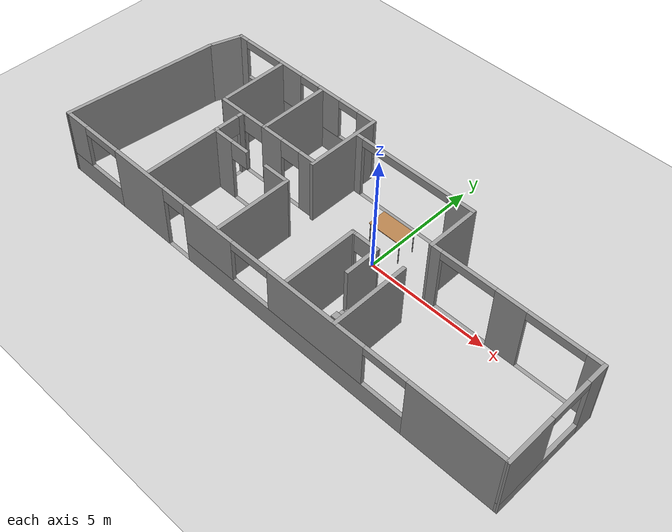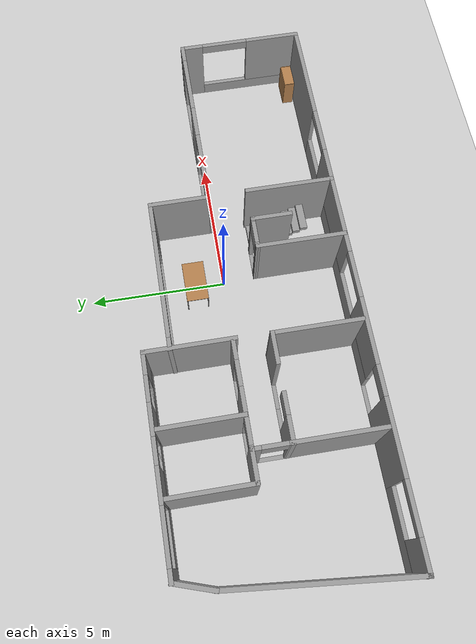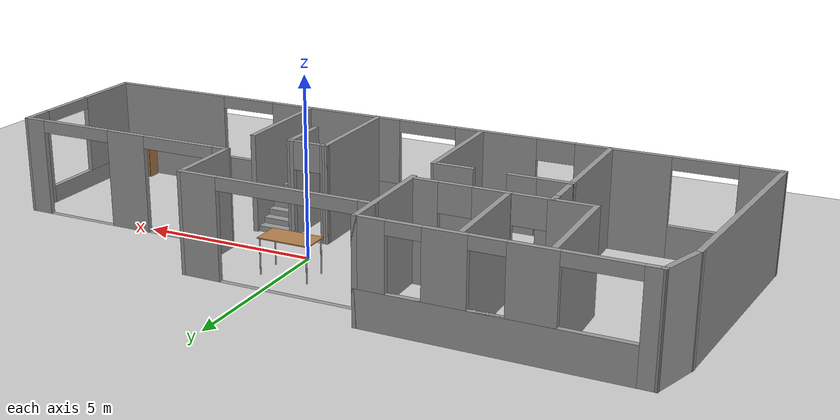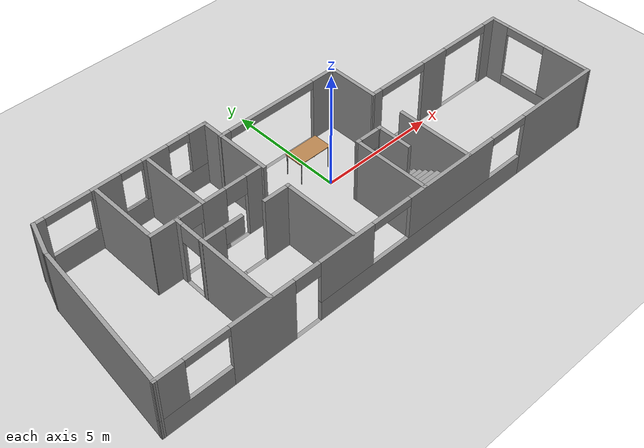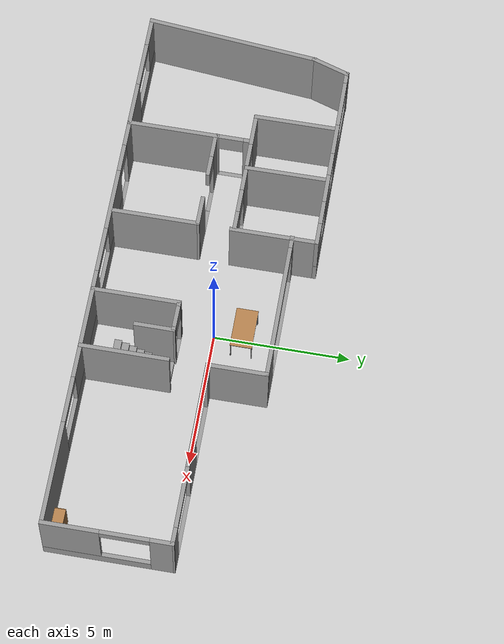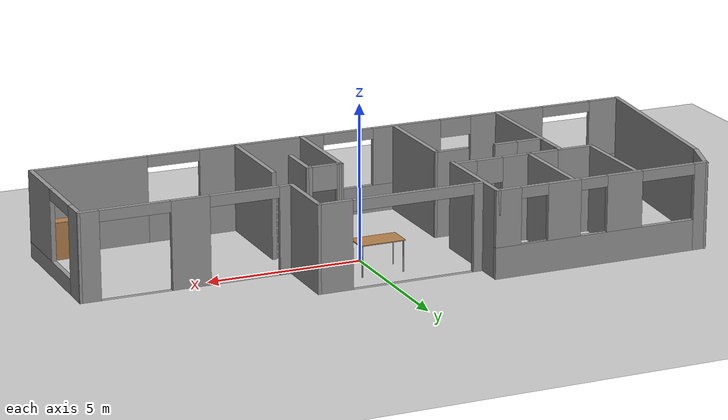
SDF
<sdf version="1.6">
 <world name="default">
  <model name="ground_plane">
   <static>1</static>
   <link name="link">
    <collision name="collision">
     <geometry><plane><normal>0 0 1</normal><size>100 100</size></plane></geometry>
     <surface>
      <contact><collide_bitmask>65535</collide_bitmask></contact>
      <friction><ode><mu>100</mu><mu2>50</mu2></ode></friction>
     </surface>
    </collision>
    <visual name="visual">
     <cast_shadows>0</cast_shadows>
     <geometry><plane><normal>0 0 1</normal><size>100 100</size></plane></geometry>
     <material>
      <script><uri>file://media/materials/scripts/gazebo.material</uri><name>Gazebo/Grey</name></script>
     </material>
    </visual>
   </link>
  </model>
  <model name="floor1">
   <pose>-1.11134 -0.568788 0 0 -0 0</pose>
   <link name="Stairs_1">
    <visual name="Stairs_1_Visual_0">
     <pose>2.86032 -0.790827 0.08125 0 -0 0</pose>
     <geometry><box><size>1 0.26925 0.1625</size></box></geometry>
     <material>
      <script><uri>file://media/materials/scripts/gazebo.material</uri><name>Gazebo/Grey</name></script>
      <ambient>1 1 1 1</ambient>
     </material>
     <meta><layer>0</layer></meta>
    </visual>
    <collision name="Stairs_1_Collision_0">
     <geometry><box><size>1 0.26925 0.1625</size></box></geometry>
     <pose>2.86032 -0.790827 0.08125 0 -0 0</pose>
    </collision>
    <visual name="Stairs_1_Visual_1">
     <pose>2.86032 -1.06008 0.24375 0 -0 0</pose>
     <geometry><box><size>1 0.26925 0.1625</size></box></geometry>
     <material>
      <script><uri>file://media/materials/scripts/gazebo.material</uri><name>Gazebo/Grey</name></script>
      <ambient>1 1 1 1</ambient>
     </material>
     <meta><layer>0</layer></meta>
    </visual>
    <collision name="Stairs_1_Collision_1">
     <geometry><box><size>1 0.26925 0.1625</size></box></geometry>
     <pose>2.86032 -1.06008 0.24375 0 -0 0</pose>
    </collision>
    <visual name="Stairs_1_Visual_2">
     <pose>2.86032 -1.32933 0.40625 0 -0 0</pose>
     <geometry><box><size>1 0.26925 0.1625</size></box></geometry>
     <material>
      <script><uri>file://media/materials/scripts/gazebo.material</uri><name>Gazebo/Grey</name></script>
      <ambient>1 1 1 1</ambient>
     </material>
     <meta><layer>0</layer></meta>
    </visual>
    <collision name="Stairs_1_Collision_2">
     <geometry><box><size>1 0.26925 0.1625</size></box></geometry>
     <pose>2.86032 -1.32933 0.40625 0 -0 0</pose>
    </collision>
    <visual name="Stairs_1_Visual_3">
     <pose>2.86032 -1.59858 0.56875 0 -0 0</pose>
     <geometry><box><size>1 0.26925 0.1625</size></box></geometry>
     <material>
      <script><uri>file://media/materials/scripts/gazebo.material</uri><name>Gazebo/Grey</name></script>
      <ambient>1 1 1 1</ambient>
     </material>
     <meta><layer>0</layer></meta>
    </visual>
    <collision name="Stairs_1_Collision_3">
     <geometry><box><size>1 0.26925 0.1625</size></box></geometry>
     <pose>2.86032 -1.59858 0.56875 0 -0 0</pose>
    </collision>
    <visual name="Stairs_1_Visual_4">
     <pose>2.86032 -1.86783 0.73125 0 -0 0</pose>
     <geometry><box><size>1 0.26925 0.1625</size></box></geometry>
     <material>
      <script><uri>file://media/materials/scripts/gazebo.material</uri><name>Gazebo/Grey</name></script>
      <ambient>1 1 1 1</ambient>
     </material>
     <meta><layer>0</layer></meta>
    </visual>
    <collision name="Stairs_1_Collision_4">
     <geometry><box><size>1 0.26925 0.1625</size></box></geometry>
     <pose>2.86032 -1.86783 0.73125 0 -0 0</pose>
    </collision>
    <visual name="Stairs_1_Visual_5">
     <pose>2.86032 -2.13708 0.89375 0 -0 0</pose>
     <geometry><box><size>1 0.26925 0.1625</size></box></geometry>
     <material>
      <script><uri>file://media/materials/scripts/gazebo.material</uri><name>Gazebo/Grey</name></script>
      <ambient>1 1 1 1</ambient>
     </material>
     <meta><layer>0</layer></meta>
    </visual>
    <collision name="Stairs_1_Collision_5">
     <geometry><box><size>1 0.26925 0.1625</size></box></geometry>
     <pose>2.86032 -2.13708 0.89375 0 -0 0</pose>
    </collision>
    <visual name="Stairs_1_Visual_6">
     <pose>2.86032 -2.40633 1.05625 0 -0 0</pose>
     <geometry><box><size>1 0.26925 0.1625</size></box></geometry>
     <material>
      <script><uri>file://media/materials/scripts/gazebo.material</uri><name>Gazebo/Grey</name></script>
      <ambient>1 1 1 1</ambient>
     </material>
     <meta><layer>0</layer></meta>
    </visual>
    <collision name="Stairs_1_Collision_6">
     <geometry><box><size>1 0.26925 0.1625</size></box></geometry>
     <pose>2.86032 -2.40633 1.05625 0 -0 0</pose>
    </collision>
    <visual name="Stairs_1_Visual_7">
     <pose>2.86032 -2.67558 1.21875 0 -0 0</pose>
     <geometry><box><size>1 0.26925 0.1625</size></box></geometry>
     <material>
      <script><uri>file://media/materials/scripts/gazebo.material</uri><name>Gazebo/Grey</name></script>
      <ambient>1 1 1 1</ambient>
     </material>
     <meta><layer>0</layer></meta>
    </visual>
    <collision name="Stairs_1_Collision_7">
     <geometry><box><size>1 0.26925 0.1625</size></box></geometry>
     <pose>2.86032 -2.67558 1.21875 0 -0 0</pose>
    </collision>
   </link>
   <link name="Wall_0">
    <pose>-5.54111 3.7677 0 0 -0 0</pose>
    <visual name="Wall_0_Visual_0">
     <pose>-3.39577 0 1.4 0 -0 0</pose>
     <geometry><box><size>0.476592 0.15 2.8</size></box></geometry>
     <material>
      <script><uri>file://media/materials/scripts/gazebo.material</uri><name>Gazebo/Grey</name></script>
      <ambient>1 1 1 1</ambient>
     </material>
     <meta><layer>0</layer></meta>
    </visual>
    <collision name="Wall_0_Collision_0">
     <geometry><box><size>0.476592 0.15 2.8</size></box></geometry>
     <pose>-3.39577 0 1.4 0 -0 0</pose>
    </collision>
    <visual name="Wall_0_Visual_1">
     <pose>0.238296 0 0.5 0 -0 0</pose>
     <geometry><box><size>6.79154 0.15 1</size></box></geometry>
     <material>
      <script><uri>file://media/materials/scripts/gazebo.material</uri><name>Gazebo/Grey</name></script>
      <ambient>1 1 1 1</ambient>
     </material>
     <meta><layer>0</layer></meta>
    </visual>
    <collision name="Wall_0_Collision_1">
     <geometry><box><size>6.79154 0.15 1</size></box></geometry>
     <pose>0.238296 0 0.5 0 -0 0</pose>
    </collision>
    <visual name="Wall_0_Visual_2">
     <pose>-0.740274 0 1.9 0 -0 0</pose>
     <geometry><box><size>1.2084 0.15 1.8</size></box></geometry>
     <material>
      <script><uri>file://media/materials/scripts/gazebo.material</uri><name>Gazebo/Grey</name></script>
      <ambient>1 1 1 1</ambient>
     </material>
     <meta><layer>0</layer></meta>
    </visual>
    <collision name="Wall_0_Collision_2">
     <geometry><box><size>1.2084 0.15 1.8</size></box></geometry>
     <pose>-0.740274 0 1.9 0 -0 0</pose>
    </collision>
    <visual name="Wall_0_Visual_3">
     <pose>1.32363 0 1.9 0 -0 0</pose>
     <geometry><box><size>1.10942 0.15 1.8</size></box></geometry>
     <material>
      <script><uri>file://media/materials/scripts/gazebo.material</uri><name>Gazebo/Grey</name></script>
      <ambient>1 1 1 1</ambient>
     </material>
     <meta><layer>0</layer></meta>
    </visual>
    <collision name="Wall_0_Collision_3">
     <geometry><box><size>1.10942 0.15 1.8</size></box></geometry>
     <pose>1.32363 0 1.9 0 -0 0</pose>
    </collision>
    <visual name="Wall_0_Visual_4">
     <pose>3.2087 0 1.9 0 -0 0</pose>
     <geometry><box><size>0.850721 0.15 1.8</size></box></geometry>
     <material>
      <script><uri>file://media/materials/scripts/gazebo.material</uri><name>Gazebo/Grey</name></script>
      <ambient>1 1 1 1</ambient>
     </material>
     <meta><layer>0</layer></meta>
    </visual>
    <collision name="Wall_0_Collision_4">
     <geometry><box><size>0.850721 0.15 1.8</size></box></geometry>
     <pose>3.2087 0 1.9 0 -0 0</pose>
    </collision>
    <visual name="Wall_0_Visual_5">
     <pose>0.316424 0 1 0 -0 0</pose>
     <geometry><box><size>0.905 0.15 0</size></box></geometry>
     <material>
      <script><uri>file://media/materials/scripts/gazebo.material</uri><name>Gazebo/Grey</name></script>
      <ambient>1 1 1 1</ambient>
     </material>
     <meta><layer>0</layer></meta>
    </visual>
    <collision name="Wall_0_Collision_5">
     <geometry><box><size>0.905 0.15 0</size></box></geometry>
     <pose>0.316424 0 1 0 -0 0</pose>
    </collision>
    <visual name="Wall_0_Visual_6">
     <pose>2.33084 0 1 0 -0 0</pose>
     <geometry><box><size>0.905 0.15 0</size></box></geometry>
     <material>
      <script><uri>file://media/materials/scripts/gazebo.material</uri><name>Gazebo/Grey</name></script>
      <ambient>1 1 1 1</ambient>
     </material>
     <meta><layer>0</layer></meta>
    </visual>
    <collision name="Wall_0_Collision_6">
     <geometry><box><size>0.905 0.15 0</size></box></geometry>
     <pose>2.33084 0 1 0 -0 0</pose>
    </collision>
    <visual name="Wall_0_Visual_7">
     <pose>0.316424 0 2.625 0 -0 0</pose>
     <geometry><box><size>0.905 0.15 0.35</size></box></geometry>
     <material>
      <script><uri>file://media/materials/scripts/gazebo.material</uri><name>Gazebo/Grey</name></script>
      <ambient>1 1 1 1</ambient>
     </material>
     <meta><layer>0</layer></meta>
    </visual>
    <collision name="Wall_0_Collision_7">
     <geometry><box><size>0.905 0.15 0.35</size></box></geometry>
     <pose>0.316424 0 2.625 0 -0 0</pose>
    </collision>
    <visual name="Wall_0_Visual_8">
     <pose>2.33084 0 2.625 0 -0 0</pose>
     <geometry><box><size>0.905 0.15 0.35</size></box></geometry>
     <material>
      <script><uri>file://media/materials/scripts/gazebo.material</uri><name>Gazebo/Grey</name></script>
      <ambient>1 1 1 1</ambient>
     </material>
     <meta><layer>0</layer></meta>
    </visual>
    <collision name="Wall_0_Collision_8">
     <geometry><box><size>0.905 0.15 0.35</size></box></geometry>
     <pose>2.33084 0 2.625 0 -0 0</pose>
    </collision>
    <visual name="Wall_0_Visual_9">
     <pose>-2.25097 0 2.6255 0 -0 0</pose>
     <geometry><box><size>1.813 0.15 0.349</size></box></geometry>
     <material>
      <script><uri>file://media/materials/scripts/gazebo.material</uri><name>Gazebo/Grey</name></script>
      <ambient>1 1 1 1</ambient>
     </material>
     <meta><layer>0</layer></meta>
    </visual>
    <collision name="Wall_0_Collision_9">
     <geometry><box><size>1.813 0.15 0.349</size></box></geometry>
     <pose>-2.25097 0 2.6255 0 -0 0</pose>
    </collision>
   </link>
   <link name="Wall_12">
    <pose>-4.39611 0.762698 0 0 -0 0</pose>
    <visual name="Wall_12_Visual_0">
     <pose>-1.75748 0 1.4 0 -0 0</pose>
     <geometry><box><size>1.23504 0.15 2.8</size></box></geometry>
     <material>
      <script><uri>file://media/materials/scripts/gazebo.material</uri><name>Gazebo/Grey</name></script>
      <ambient>1 1 1 1</ambient>
     </material>
     <meta><layer>0</layer></meta>
    </visual>
    <collision name="Wall_12_Collision_0">
     <geometry><box><size>1.23504 0.15 2.8</size></box></geometry>
     <pose>-1.75748 0 1.4 0 -0 0</pose>
    </collision>
    <visual name="Wall_12_Visual_1">
     <pose>0.267406 0 1.4 0 -0 0</pose>
     <geometry><box><size>1.01474 0.15 2.8</size></box></geometry>
     <material>
      <script><uri>file://media/materials/scripts/gazebo.material</uri><name>Gazebo/Grey</name></script>
      <ambient>1 1 1 1</ambient>
     </material>
     <meta><layer>0</layer></meta>
    </visual>
    <collision name="Wall_12_Collision_1">
     <geometry><box><size>1.01474 0.15 2.8</size></box></geometry>
     <pose>0.267406 0 1.4 0 -0 0</pose>
    </collision>
    <visual name="Wall_12_Visual_2">
     <pose>2.02489 0 1.4 0 -0 0</pose>
     <geometry><box><size>0.700223 0.15 2.8</size></box></geometry>
     <material>
      <script><uri>file://media/materials/scripts/gazebo.material</uri><name>Gazebo/Grey</name></script>
      <ambient>1 1 1 1</ambient>
     </material>
     <meta><layer>0</layer></meta>
    </visual>
    <collision name="Wall_12_Collision_2">
     <geometry><box><size>0.700223 0.15 2.8</size></box></geometry>
     <pose>2.02489 0 1.4 0 -0 0</pose>
    </collision>
    <visual name="Wall_12_Visual_3">
     <pose>-0.689965 0 0 0 -0 0</pose>
     <geometry><box><size>0.9 0.15 0</size></box></geometry>
     <material>
      <script><uri>file://media/materials/scripts/gazebo.material</uri><name>Gazebo/Grey</name></script>
      <ambient>1 1 1 1</ambient>
     </material>
     <meta><layer>0</layer></meta>
    </visual>
    <collision name="Wall_12_Collision_3">
     <geometry><box><size>0.9 0.15 0</size></box></geometry>
     <pose>-0.689965 0 0 0 -0 0</pose>
    </collision>
    <visual name="Wall_12_Visual_4">
     <pose>1.22478 0 0 0 -0 0</pose>
     <geometry><box><size>0.9 0.15 0</size></box></geometry>
     <material>
      <script><uri>file://media/materials/scripts/gazebo.material</uri><name>Gazebo/Grey</name></script>
      <ambient>1 1 1 1</ambient>
     </material>
     <meta><layer>0</layer></meta>
    </visual>
    <collision name="Wall_12_Collision_4">
     <geometry><box><size>0.9 0.15 0</size></box></geometry>
     <pose>1.22478 0 0 0 -0 0</pose>
    </collision>
    <visual name="Wall_12_Visual_5">
     <pose>-0.689965 0 2.4 0 -0 0</pose>
     <geometry><box><size>0.9 0.15 0.8</size></box></geometry>
     <material>
      <script><uri>file://media/materials/scripts/gazebo.material</uri><name>Gazebo/Grey</name></script>
      <ambient>1 1 1 1</ambient>
     </material>
     <meta><layer>0</layer></meta>
    </visual>
    <collision name="Wall_12_Collision_5">
     <geometry><box><size>0.9 0.15 0.8</size></box></geometry>
     <pose>-0.689965 0 2.4 0 -0 0</pose>
    </collision>
    <visual name="Wall_12_Visual_6">
     <pose>1.22478 0 2.4 0 -0 0</pose>
     <geometry><box><size>0.9 0.15 0.8</size></box></geometry>
     <material>
      <script><uri>file://media/materials/scripts/gazebo.material</uri><name>Gazebo/Grey</name></script>
      <ambient>1 1 1 1</ambient>
     </material>
     <meta><layer>0</layer></meta>
    </visual>
    <collision name="Wall_12_Collision_6">
     <geometry><box><size>0.9 0.15 0.8</size></box></geometry>
     <pose>1.22478 0 2.4 0 -0 0</pose>
    </collision>
   </link>
   <link name="Wall_16">
    <pose>0.703392 2.8632 0 0 -0 -0.001291</pose>
    <visual name="Wall_16_Visual_0">
     <pose>-2.54964 0 1.4 0 -0 0</pose>
     <geometry><box><size>0.473046 0.15 2.8</size></box></geometry>
     <material>
      <script><uri>file://media/materials/scripts/gazebo.material</uri><name>Gazebo/Grey</name></script>
      <ambient>1 1 1 1</ambient>
     </material>
     <meta><layer>0</layer></meta>
    </visual>
    <collision name="Wall_16_Collision_0">
     <geometry><box><size>0.473046 0.15 2.8</size></box></geometry>
     <pose>-2.54964 0 1.4 0 -0 0</pose>
    </collision>
    <visual name="Wall_16_Visual_1">
     <pose>2.21802 0 1.4 0 -0 0</pose>
     <geometry><box><size>1.13628 0.15 2.8</size></box></geometry>
     <material>
      <script><uri>file://media/materials/scripts/gazebo.material</uri><name>Gazebo/Grey</name></script>
      <ambient>1 1 1 1</ambient>
     </material>
     <meta><layer>0</layer></meta>
    </visual>
    <collision name="Wall_16_Collision_1">
     <geometry><box><size>1.13628 0.15 2.8</size></box></geometry>
     <pose>2.21802 0 1.4 0 -0 0</pose>
    </collision>
    <visual name="Wall_16_Visual_2">
     <pose>-0.331617 0 0 0 -0 0</pose>
     <geometry><box><size>3.963 0.15 0</size></box></geometry>
     <material>
      <script><uri>file://media/materials/scripts/gazebo.material</uri><name>Gazebo/Grey</name></script>
      <ambient>1 1 1 1</ambient>
     </material>
     <meta><layer>0</layer></meta>
    </visual>
    <collision name="Wall_16_Collision_2">
     <geometry><box><size>3.963 0.15 0</size></box></geometry>
     <pose>-0.331617 0 0 0 -0 0</pose>
    </collision>
    <visual name="Wall_16_Visual_3">
     <pose>-0.331617 0 2.625 0 -0 0</pose>
     <geometry><box><size>3.963 0.15 0.35</size></box></geometry>
     <material>
      <script><uri>file://media/materials/scripts/gazebo.material</uri><name>Gazebo/Grey</name></script>
      <ambient>1 1 1 1</ambient>
     </material>
     <meta><layer>0</layer></meta>
    </visual>
    <collision name="Wall_16_Collision_3">
     <geometry><box><size>3.963 0.15 0.35</size></box></geometry>
     <pose>-0.331617 0 2.625 0 -0 0</pose>
    </collision>
   </link>
   <link name="Wall_17">
    <collision name="Wall_17_Collision">
     <geometry><box><size>2.25007 0.15 2.8</size></box></geometry>
     <pose>0 0 1.4 0 -0 0</pose>
    </collision>
    <visual name="Wall_17_Visual">
     <pose>0 0 1.4 0 -0 0</pose>
     <geometry><box><size>2.25007 0.15 2.8</size></box></geometry>
     <material>
      <script><uri>file://media/materials/scripts/gazebo.material</uri><name>Gazebo/Grey</name></script>
      <ambient>1 1 1 1</ambient>
     </material>
     <meta><layer>0</layer></meta>
    </visual>
    <pose>3.41489 1.8097 0 0 -0 -1.5708</pose>
   </link>
   <link name="Wall_18">
    <pose>6.76989 0.754698 0 0 -0 -0.00149</pose>
    <visual name="Wall_18_Visual_0">
     <pose>-3.17918 0 1.4 0 -0 0</pose>
     <geometry><box><size>0.501647 0.15 2.8</size></box></geometry>
     <material>
      <script><uri>file://media/materials/scripts/gazebo.material</uri><name>Gazebo/Grey</name></script>
      <ambient>1 1 1 1</ambient>
     </material>
     <meta><layer>0</layer></meta>
    </visual>
    <collision name="Wall_18_Collision_0">
     <geometry><box><size>0.501647 0.15 2.8</size></box></geometry>
     <pose>-3.17918 0 1.4 0 -0 0</pose>
    </collision>
    <visual name="Wall_18_Visual_1">
     <pose>-0.088728 0 1.4 0 -0 0</pose>
     <geometry><box><size>1.22525 0.15 2.8</size></box></geometry>
     <material>
      <script><uri>file://media/materials/scripts/gazebo.material</uri><name>Gazebo/Grey</name></script>
      <ambient>1 1 1 1</ambient>
     </material>
     <meta><layer>0</layer></meta>
    </visual>
    <collision name="Wall_18_Collision_1">
     <geometry><box><size>1.22525 0.15 2.8</size></box></geometry>
     <pose>-0.088728 0 1.4 0 -0 0</pose>
    </collision>
    <visual name="Wall_18_Visual_2">
     <pose>3.09345 0 1.4 0 -0 0</pose>
     <geometry><box><size>0.673102 0.15 2.8</size></box></geometry>
     <material>
      <script><uri>file://media/materials/scripts/gazebo.material</uri><name>Gazebo/Grey</name></script>
      <ambient>1 1 1 1</ambient>
     </material>
     <meta><layer>0</layer></meta>
    </visual>
    <collision name="Wall_18_Collision_2">
     <geometry><box><size>0.673102 0.15 2.8</size></box></geometry>
     <pose>3.09345 0 1.4 0 -0 0</pose>
    </collision>
    <visual name="Wall_18_Visual_3">
     <pose>-1.81485 0 0 0 -0 0</pose>
     <geometry><box><size>2.227 0.15 0</size></box></geometry>
     <material>
      <script><uri>file://media/materials/scripts/gazebo.material</uri><name>Gazebo/Grey</name></script>
      <ambient>1 1 1 1</ambient>
     </material>
     <meta><layer>0</layer></meta>
    </visual>
    <collision name="Wall_18_Collision_3">
     <geometry><box><size>2.227 0.15 0</size></box></geometry>
     <pose>-1.81485 0 0 0 -0 0</pose>
    </collision>
    <visual name="Wall_18_Visual_4">
     <pose>1.6404 0 0 0 -0 0</pose>
     <geometry><box><size>2.233 0.15 0</size></box></geometry>
     <material>
      <script><uri>file://media/materials/scripts/gazebo.material</uri><name>Gazebo/Grey</name></script>
      <ambient>1 1 1 1</ambient>
     </material>
     <meta><layer>0</layer></meta>
    </visual>
    <collision name="Wall_18_Collision_4">
     <geometry><box><size>2.233 0.15 0</size></box></geometry>
     <pose>1.6404 0 0 0 -0 0</pose>
    </collision>
    <visual name="Wall_18_Visual_5">
     <pose>-1.81485 0 2.625 0 -0 0</pose>
     <geometry><box><size>2.227 0.15 0.35</size></box></geometry>
     <material>
      <script><uri>file://media/materials/scripts/gazebo.material</uri><name>Gazebo/Grey</name></script>
      <ambient>1 1 1 1</ambient>
     </material>
     <meta><layer>0</layer></meta>
    </visual>
    <collision name="Wall_18_Collision_5">
     <geometry><box><size>2.227 0.15 0.35</size></box></geometry>
     <pose>-1.81485 0 2.625 0 -0 0</pose>
    </collision>
    <visual name="Wall_18_Visual_6">
     <pose>1.6404 0 2.625 0 -0 0</pose>
     <geometry><box><size>2.233 0.15 0.35</size></box></geometry>
     <material>
      <script><uri>file://media/materials/scripts/gazebo.material</uri><name>Gazebo/Grey</name></script>
      <ambient>1 1 1 1</ambient>
     </material>
     <meta><layer>0</layer></meta>
    </visual>
    <collision name="Wall_18_Collision_6">
     <geometry><box><size>2.233 0.15 0.35</size></box></geometry>
     <pose>1.6404 0 2.625 0 -0 0</pose>
    </collision>
   </link>
   <link name="Wall_2">
    <collision name="Wall_2_Collision">
     <geometry><box><size>3.25 0.15 2.8</size></box></geometry>
     <pose>0 0 1.4 0 -0 0</pose>
    </collision>
    <visual name="Wall_2_Visual">
     <pose>0 0 1.4 0 -0 0</pose>
     <geometry><box><size>3.25 0.15 2.8</size></box></geometry>
     <material>
      <script><uri>file://media/materials/scripts/gazebo.material</uri><name>Gazebo/Grey</name></script>
      <ambient>1 1 1 1</ambient>
     </material>
     <meta><layer>0</layer></meta>
    </visual>
    <pose>-1.98211 2.2177 0 0 -0 1.5708</pose>
   </link>
   <link name="Wall_20">
    <pose>10.1299 -1.5153 0 0 -0 -1.56859</pose>
    <visual name="Wall_20_Visual_0">
     <pose>-1.91149 0 1.4 0 -0 0</pose>
     <geometry><box><size>0.857096 0.15 2.8</size></box></geometry>
     <material>
      <script><uri>file://media/materials/scripts/gazebo.material</uri><name>Gazebo/Grey</name></script>
      <ambient>1 1 1 1</ambient>
     </material>
     <meta><layer>0</layer></meta>
    </visual>
    <collision name="Wall_20_Collision_0">
     <geometry><box><size>0.857096 0.15 2.8</size></box></geometry>
     <pose>-1.91149 0 1.4 0 -0 0</pose>
    </collision>
    <visual name="Wall_20_Visual_1">
     <pose>0.428548 0 0.25 0 -0 0</pose>
     <geometry><box><size>3.82298 0.15 0.5</size></box></geometry>
     <material>
      <script><uri>file://media/materials/scripts/gazebo.material</uri><name>Gazebo/Grey</name></script>
      <ambient>1 1 1 1</ambient>
     </material>
     <meta><layer>0</layer></meta>
    </visual>
    <collision name="Wall_20_Collision_1">
     <geometry><box><size>3.82298 0.15 0.5</size></box></geometry>
     <pose>0.428548 0 0.25 0 -0 0</pose>
    </collision>
    <visual name="Wall_20_Visual_2">
     <pose>1.30205 0 1.65 0 -0 0</pose>
     <geometry><box><size>2.07598 0.15 2.3</size></box></geometry>
     <material>
      <script><uri>file://media/materials/scripts/gazebo.material</uri><name>Gazebo/Grey</name></script>
      <ambient>1 1 1 1</ambient>
     </material>
     <meta><layer>0</layer></meta>
    </visual>
    <collision name="Wall_20_Collision_2">
     <geometry><box><size>2.07598 0.15 2.3</size></box></geometry>
     <pose>1.30205 0 1.65 0 -0 0</pose>
    </collision>
    <visual name="Wall_20_Visual_3">
     <pose>-0.609443 0 2.625 0 -0 0</pose>
     <geometry><box><size>1.747 0.15 0.35</size></box></geometry>
     <material>
      <script><uri>file://media/materials/scripts/gazebo.material</uri><name>Gazebo/Grey</name></script>
      <ambient>1 1 1 1</ambient>
     </material>
     <meta><layer>0</layer></meta>
    </visual>
    <collision name="Wall_20_Collision_3">
     <geometry><box><size>1.747 0.15 0.35</size></box></geometry>
     <pose>-0.609443 0 2.625 0 -0 0</pose>
    </collision>
   </link>
   <link name="Wall_21">
    <pose>0.003392 -3.7803 0 0 -0 3.14159</pose>
    <visual name="Wall_21_Visual_0">
     <pose>-8.30479 0 1.4 0 -0 0</pose>
     <geometry><box><size>3.80296 0.15 2.8</size></box></geometry>
     <material>
      <script><uri>file://media/materials/scripts/gazebo.material</uri><name>Gazebo/Grey</name></script>
      <ambient>1 1 1 1</ambient>
     </material>
     <meta><layer>0</layer></meta>
    </visual>
    <collision name="Wall_21_Collision_0">
     <geometry><box><size>3.80296 0.15 2.8</size></box></geometry>
     <pose>-8.30479 0 1.4 0 -0 0</pose>
    </collision>
    <visual name="Wall_21_Visual_1">
     <pose>6.01328 0 1.4 0 -0 0</pose>
     <geometry><box><size>2.6183 0.15 2.8</size></box></geometry>
     <material>
      <script><uri>file://media/materials/scripts/gazebo.material</uri><name>Gazebo/Grey</name></script>
      <ambient>1 1 1 1</ambient>
     </material>
     <meta><layer>0</layer></meta>
    </visual>
    <collision name="Wall_21_Collision_1">
     <geometry><box><size>2.6183 0.15 2.8</size></box></geometry>
     <pose>6.01328 0 1.4 0 -0 0</pose>
    </collision>
    <visual name="Wall_21_Visual_2">
     <pose>-1.38859 0 0.45 0 -0 0</pose>
     <geometry><box><size>10.0294 0.15 0.9</size></box></geometry>
     <material>
      <script><uri>file://media/materials/scripts/gazebo.material</uri><name>Gazebo/Grey</name></script>
      <ambient>1 1 1 1</ambient>
     </material>
     <meta><layer>0</layer></meta>
    </visual>
    <collision name="Wall_21_Collision_2">
     <geometry><box><size>10.0294 0.15 0.9</size></box></geometry>
     <pose>-1.38859 0 0.45 0 -0 0</pose>
    </collision>
    <visual name="Wall_21_Visual_3">
     <pose>8.76435 0 0.45 0 -0 0</pose>
     <geometry><box><size>2.88384 0.15 0.9</size></box></geometry>
     <material>
      <script><uri>file://media/materials/scripts/gazebo.material</uri><name>Gazebo/Grey</name></script>
      <ambient>1 1 1 1</ambient>
     </material>
     <meta><layer>0</layer></meta>
    </visual>
    <collision name="Wall_21_Collision_3">
     <geometry><box><size>2.88384 0.15 0.9</size></box></geometry>
     <pose>8.76435 0 0.45 0 -0 0</pose>
    </collision>
    <visual name="Wall_21_Visual_4">
     <pose>4.16513 0 0 0 -0 0</pose>
     <geometry><box><size>1.078 0.15 0</size></box></geometry>
     <material>
      <script><uri>file://media/materials/scripts/gazebo.material</uri><name>Gazebo/Grey</name></script>
      <ambient>1 1 1 1</ambient>
     </material>
     <meta><layer>0</layer></meta>
    </visual>
    <collision name="Wall_21_Collision_4">
     <geometry><box><size>1.078 0.15 0</size></box></geometry>
     <pose>4.16513 0 0 0 -0 0</pose>
    </collision>
    <visual name="Wall_21_Visual_5">
     <pose>-2.5862 0 1.85 0 -0 0</pose>
     <geometry><box><size>4.19423 0.15 1.9</size></box></geometry>
     <material>
      <script><uri>file://media/materials/scripts/gazebo.material</uri><name>Gazebo/Grey</name></script>
      <ambient>1 1 1 1</ambient>
     </material>
     <meta><layer>0</layer></meta>
    </visual>
    <collision name="Wall_21_Collision_5">
     <geometry><box><size>4.19423 0.15 1.9</size></box></geometry>
     <pose>-2.5862 0 1.85 0 -0 0</pose>
    </collision>
    <visual name="Wall_21_Visual_6">
     <pose>2.42879 0 1.85 0 -0 0</pose>
     <geometry><box><size>2.39469 0.15 1.9</size></box></geometry>
     <material>
      <script><uri>file://media/materials/scripts/gazebo.material</uri><name>Gazebo/Grey</name></script>
      <ambient>1 1 1 1</ambient>
     </material>
     <meta><layer>0</layer></meta>
    </visual>
    <collision name="Wall_21_Collision_6">
     <geometry><box><size>2.39469 0.15 1.9</size></box></geometry>
     <pose>2.42879 0 1.85 0 -0 0</pose>
    </collision>
    <visual name="Wall_21_Visual_7">
     <pose>2.42879 0 1.85 0 -0 0</pose>
     <geometry><box><size>2.39469 0.15 1.9</size></box></geometry>
     <material>
      <script><uri>file://media/materials/scripts/gazebo.material</uri><name>Gazebo/Grey</name></script>
      <ambient>1 1 1 1</ambient>
     </material>
     <meta><layer>0</layer></meta>
    </visual>
    <collision name="Wall_21_Collision_7">
     <geometry><box><size>2.39469 0.15 1.9</size></box></geometry>
     <pose>2.42879 0 1.85 0 -0 0</pose>
    </collision>
    <visual name="Wall_21_Visual_8">
     <pose>9.62785 0 1.85 0 -0 0</pose>
     <geometry><box><size>1.15684 0.15 1.9</size></box></geometry>
     <material>
      <script><uri>file://media/materials/scripts/gazebo.material</uri><name>Gazebo/Grey</name></script>
      <ambient>1 1 1 1</ambient>
     </material>
     <meta><layer>0</layer></meta>
    </visual>
    <collision name="Wall_21_Collision_8">
     <geometry><box><size>1.15684 0.15 1.9</size></box></geometry>
     <pose>9.62785 0 1.85 0 -0 0</pose>
    </collision>
    <visual name="Wall_21_Visual_9">
     <pose>4.16513 0 2.5 0 -0 0</pose>
     <geometry><box><size>1.078 0.15 0.6</size></box></geometry>
     <material>
      <script><uri>file://media/materials/scripts/gazebo.material</uri><name>Gazebo/Grey</name></script>
      <ambient>1 1 1 1</ambient>
     </material>
     <meta><layer>0</layer></meta>
    </visual>
    <collision name="Wall_21_Collision_9">
     <geometry><box><size>1.078 0.15 0.6</size></box></geometry>
     <pose>4.16513 0 2.5 0 -0 0</pose>
    </collision>
    <visual name="Wall_21_Visual_10">
     <pose>4.16513 0 2.5 0 -0 0</pose>
     <geometry><box><size>1.078 0.15 0.6</size></box></geometry>
     <material>
      <script><uri>file://media/materials/scripts/gazebo.material</uri><name>Gazebo/Grey</name></script>
      <ambient>1 1 1 1</ambient>
     </material>
     <meta><layer>0</layer></meta>
    </visual>
    <collision name="Wall_21_Collision_10">
     <geometry><box><size>1.078 0.15 0.6</size></box></geometry>
     <pose>4.16513 0 2.5 0 -0 0</pose>
    </collision>
    <visual name="Wall_21_Visual_11">
     <pose>-5.54331 0 2.625 0 -0 0</pose>
     <geometry><box><size>1.72 0.15 0.35</size></box></geometry>
     <material>
      <script><uri>file://media/materials/scripts/gazebo.material</uri><name>Gazebo/Grey</name></script>
      <ambient>1 1 1 1</ambient>
     </material>
     <meta><layer>0</layer></meta>
    </visual>
    <collision name="Wall_21_Collision_11">
     <geometry><box><size>1.72 0.15 0.35</size></box></geometry>
     <pose>-5.54331 0 2.625 0 -0 0</pose>
    </collision>
    <visual name="Wall_21_Visual_12">
     <pose>8.18593 0 2.625 0 -0 0</pose>
     <geometry><box><size>1.727 0.15 0.35</size></box></geometry>
     <material>
      <script><uri>file://media/materials/scripts/gazebo.material</uri><name>Gazebo/Grey</name></script>
      <ambient>1 1 1 1</ambient>
     </material>
     <meta><layer>0</layer></meta>
    </visual>
    <collision name="Wall_21_Collision_12">
     <geometry><box><size>1.727 0.15 0.35</size></box></geometry>
     <pose>8.18593 0 2.625 0 -0 0</pose>
    </collision>
    <visual name="Wall_21_Visual_13">
     <pose>0.371178 0 2.625 0 -0 0</pose>
     <geometry><box><size>1.72052 0.15 0.35</size></box></geometry>
     <material>
      <script><uri>file://media/materials/scripts/gazebo.material</uri><name>Gazebo/Grey</name></script>
      <ambient>1 1 1 1</ambient>
     </material>
     <meta><layer>0</layer></meta>
    </visual>
    <collision name="Wall_21_Collision_13">
     <geometry><box><size>1.72052 0.15 0.35</size></box></geometry>
     <pose>0.371178 0 2.625 0 -0 0</pose>
    </collision>
   </link>
   <link name="Wall_23">
    <collision name="Wall_23_Collision">
     <geometry><box><size>6.448 0.15 2.8</size></box></geometry>
     <pose>0 0 1.4 0 -0 0</pose>
    </collision>
    <visual name="Wall_23_Visual">
     <pose>0 0 1.4 0 -0 0</pose>
     <geometry><box><size>6.448 0.15 2.8</size></box></geometry>
     <material>
      <script><uri>file://media/materials/scripts/gazebo.material</uri><name>Gazebo/Grey</name></script>
      <ambient>1 1 1 1</ambient>
     </material>
     <meta><layer>0</layer></meta>
    </visual>
    <pose>-9.82161 -0.646302 0 0 -0 1.47331</pose>
   </link>
   <link name="Wall_24">
    <collision name="Wall_24_Collision">
     <geometry><box><size>1.49585 0.15 2.8</size></box></geometry>
     <pose>0 0 1.4 0 -0 0</pose>
    </collision>
    <visual name="Wall_24_Visual">
     <pose>0 0 1.4 0 -0 0</pose>
     <geometry><box><size>1.49585 0.15 2.8</size></box></geometry>
     <material>
      <script><uri>file://media/materials/scripts/gazebo.material</uri><name>Gazebo/Grey</name></script>
      <ambient>1 1 1 1</ambient>
     </material>
     <meta><layer>0</layer></meta>
    </visual>
    <pose>-9.30761 3.1277 0 0 -0 1.25727</pose>
   </link>
   <link name="Wall_26">
    <pose>-5.66611 -1.5103 0 0 -0 1.56857</pose>
    <visual name="Wall_26_Visual_0">
     <pose>-0.623675 0 1.4 0 -0 0</pose>
     <geometry><box><size>3.39275 0.15 2.8</size></box></geometry>
     <material>
      <script><uri>file://media/materials/scripts/gazebo.material</uri><name>Gazebo/Grey</name></script>
      <ambient>1 1 1 1</ambient>
     </material>
     <meta><layer>0</layer></meta>
    </visual>
    <collision name="Wall_26_Collision_0">
     <geometry><box><size>3.39275 0.15 2.8</size></box></geometry>
     <pose>-0.623675 0 1.4 0 -0 0</pose>
    </collision>
    <visual name="Wall_26_Visual_1">
     <pose>2.14637 0 1.4 0 -0 0</pose>
     <geometry><box><size>0.347351 0.15 2.8</size></box></geometry>
     <material>
      <script><uri>file://media/materials/scripts/gazebo.material</uri><name>Gazebo/Grey</name></script>
      <ambient>1 1 1 1</ambient>
     </material>
     <meta><layer>0</layer></meta>
    </visual>
    <collision name="Wall_26_Collision_1">
     <geometry><box><size>0.347351 0.15 2.8</size></box></geometry>
     <pose>2.14637 0 1.4 0 -0 0</pose>
    </collision>
    <visual name="Wall_26_Visual_2">
     <pose>1.5227 0 0 0 -0 0</pose>
     <geometry><box><size>0.9 0.15 0</size></box></geometry>
     <material>
      <script><uri>file://media/materials/scripts/gazebo.material</uri><name>Gazebo/Grey</name></script>
      <ambient>1 1 1 1</ambient>
     </material>
     <meta><layer>0</layer></meta>
    </visual>
    <collision name="Wall_26_Collision_2">
     <geometry><box><size>0.9 0.15 0</size></box></geometry>
     <pose>1.5227 0 0 0 -0 0</pose>
    </collision>
    <visual name="Wall_26_Visual_3">
     <pose>1.5227 0 2.4 0 -0 0</pose>
     <geometry><box><size>0.9 0.15 0.8</size></box></geometry>
     <material>
      <script><uri>file://media/materials/scripts/gazebo.material</uri><name>Gazebo/Grey</name></script>
      <ambient>1 1 1 1</ambient>
     </material>
     <meta><layer>0</layer></meta>
    </visual>
    <collision name="Wall_26_Collision_3">
     <geometry><box><size>0.9 0.15 0.8</size></box></geometry>
     <pose>1.5227 0 2.4 0 -0 0</pose>
    </collision>
   </link>
   <link name="Wall_28">
    <pose>-3.83611 -0.570302 0 0 -0 -0.002725</pose>
    <visual name="Wall_28_Visual_0">
     <pose>-1.42855 0 1.4 0 -0 0</pose>
     <geometry><box><size>0.963031 0.15 2.8</size></box></geometry>
     <material>
      <script><uri>file://media/materials/scripts/gazebo.material</uri><name>Gazebo/Grey</name></script>
      <ambient>1 1 1 1</ambient>
     </material>
     <meta><layer>0</layer></meta>
    </visual>
    <collision name="Wall_28_Collision_0">
     <geometry><box><size>0.963031 0.15 2.8</size></box></geometry>
     <pose>-1.42855 0 1.4 0 -0 0</pose>
    </collision>
    <visual name="Wall_28_Visual_1">
     <pose>0.879765 0 0 0 -0 0</pose>
     <geometry><box><size>2.06059 0.15 0</size></box></geometry>
     <material>
      <script><uri>file://media/materials/scripts/gazebo.material</uri><name>Gazebo/Grey</name></script>
      <ambient>1 1 1 1</ambient>
     </material>
     <meta><layer>0</layer></meta>
    </visual>
    <collision name="Wall_28_Collision_1">
     <geometry><box><size>2.06059 0.15 0</size></box></geometry>
     <pose>0.879765 0 0 0 -0 0</pose>
    </collision>
    <visual name="Wall_28_Visual_2">
     <pose>1.32539 0 1.4 0 -0 0</pose>
     <geometry><box><size>1.16934 0.15 2.8</size></box></geometry>
     <material>
      <script><uri>file://media/materials/scripts/gazebo.material</uri><name>Gazebo/Grey</name></script>
      <ambient>1 1 1 1</ambient>
     </material>
     <meta><layer>0</layer></meta>
    </visual>
    <collision name="Wall_28_Collision_2">
     <geometry><box><size>1.16934 0.15 2.8</size></box></geometry>
     <pose>1.32539 0 1.4 0 -0 0</pose>
    </collision>
    <visual name="Wall_28_Visual_3">
     <pose>-0.54878 0 0 0 -0 0</pose>
     <geometry><box><size>0.7965 0.15 0</size></box></geometry>
     <material>
      <script><uri>file://media/materials/scripts/gazebo.material</uri><name>Gazebo/Grey</name></script>
      <ambient>1 1 1 1</ambient>
     </material>
     <meta><layer>0</layer></meta>
    </visual>
    <collision name="Wall_28_Collision_3">
     <geometry><box><size>0.7965 0.15 0</size></box></geometry>
     <pose>-0.54878 0 0 0 -0 0</pose>
    </collision>
    <visual name="Wall_28_Visual_4">
     <pose>1.32539 0 1.4 0 -0 0</pose>
     <geometry><box><size>1.16934 0.15 2.8</size></box></geometry>
     <material>
      <script><uri>file://media/materials/scripts/gazebo.material</uri><name>Gazebo/Grey</name></script>
      <ambient>1 1 1 1</ambient>
     </material>
     <meta><layer>0</layer></meta>
    </visual>
    <collision name="Wall_28_Collision_4">
     <geometry><box><size>1.16934 0.15 2.8</size></box></geometry>
     <pose>1.32539 0 1.4 0 -0 0</pose>
    </collision>
    <visual name="Wall_28_Visual_5">
     <pose>-0.553154 0 2.4 0 -0 0</pose>
     <geometry><box><size>0.787753 0.15 0.8</size></box></geometry>
     <material>
      <script><uri>file://media/materials/scripts/gazebo.material</uri><name>Gazebo/Grey</name></script>
      <ambient>1 1 1 1</ambient>
     </material>
     <meta><layer>0</layer></meta>
    </visual>
    <collision name="Wall_28_Collision_5">
     <geometry><box><size>0.787753 0.15 0.8</size></box></geometry>
     <pose>-0.553154 0 2.4 0 -0 0</pose>
    </collision>
   </link>
   <link name="Wall_29">
    <collision name="Wall_29_Collision">
     <geometry><box><size>3.24 0.15 2.8</size></box></geometry>
     <pose>0 0 1.4 0 -0 0</pose>
    </collision>
    <visual name="Wall_29_Visual">
     <pose>0 0 1.4 0 -0 0</pose>
     <geometry><box><size>3.24 0.15 2.8</size></box></geometry>
     <material>
      <script><uri>file://media/materials/scripts/gazebo.material</uri><name>Gazebo/Grey</name></script>
      <ambient>1 1 1 1</ambient>
     </material>
     <meta><layer>0</layer></meta>
    </visual>
    <pose>-2.00111 -2.1203 0 0 -0 -1.5708</pose>
   </link>
   <link name="Wall_31">
    <collision name="Wall_31_Collision">
     <geometry><box><size>3.25 0.15 2.8</size></box></geometry>
     <pose>0 0 1.4 0 -0 0</pose>
    </collision>
    <visual name="Wall_31_Visual">
     <pose>0 0 1.4 0 -0 0</pose>
     <geometry><box><size>3.25 0.15 2.8</size></box></geometry>
     <material>
      <script><uri>file://media/materials/scripts/gazebo.material</uri><name>Gazebo/Grey</name></script>
      <ambient>1 1 1 1</ambient>
     </material>
     <meta><layer>0</layer></meta>
    </visual>
    <pose>3.44689 -2.2193 0 0 -0 -1.5708</pose>
   </link>
   <link name="Wall_33">
    <collision name="Wall_33_Collision">
     <geometry><box><size>1.5 0.15 2.8</size></box></geometry>
     <pose>0 0 1.4 0 -0 0</pose>
    </collision>
    <visual name="Wall_33_Visual">
     <pose>0 0 1.4 0 -0 0</pose>
     <geometry><box><size>1.5 0.15 2.8</size></box></geometry>
     <material>
      <script><uri>file://media/materials/scripts/gazebo.material</uri><name>Gazebo/Grey</name></script>
      <ambient>1 1 1 1</ambient>
     </material>
     <meta><layer>0</layer></meta>
    </visual>
    <pose>2.29689 -1.3443 0 0 -0 -1.5708</pose>
   </link>
   <link name="Wall_35">
    <collision name="Wall_35_Collision">
     <geometry><box><size>3.25 0.15 2.8</size></box></geometry>
     <pose>0 0 1.4 0 -0 0</pose>
    </collision>
    <visual name="Wall_35_Visual">
     <pose>0 0 1.4 0 -0 0</pose>
     <geometry><box><size>3.25 0.15 2.8</size></box></geometry>
     <material>
      <script><uri>file://media/materials/scripts/gazebo.material</uri><name>Gazebo/Grey</name></script>
      <ambient>1 1 1 1</ambient>
     </material>
     <meta><layer>0</layer></meta>
    </visual>
    <pose>1.21589 -2.2083 0 0 -0 -1.5708</pose>
   </link>
   <link name="Wall_37">
    <pose>1.75639 -0.663802 0 0 -0 -0.010175</pose>
    <visual name="Wall_37_Visual_0">
     <pose>-0.506555 0 1.4 0 -0 0</pose>
     <geometry><box><size>0.21795 0.15 2.8</size></box></geometry>
     <material>
      <script><uri>file://media/materials/scripts/gazebo.material</uri><name>Gazebo/Grey</name></script>
      <ambient>1 1 1 1</ambient>
     </material>
     <meta><layer>0</layer></meta>
    </visual>
    <collision name="Wall_37_Collision_0">
     <geometry><box><size>0.21795 0.15 2.8</size></box></geometry>
     <pose>-0.506555 0 1.4 0 -0 0</pose>
    </collision>
    <visual name="Wall_37_Visual_1">
     <pose>0.518727 0 1.4 0 -0 0</pose>
     <geometry><box><size>0.193606 0.15 2.8</size></box></geometry>
     <material>
      <script><uri>file://media/materials/scripts/gazebo.material</uri><name>Gazebo/Grey</name></script>
      <ambient>1 1 1 1</ambient>
     </material>
     <meta><layer>0</layer></meta>
    </visual>
    <collision name="Wall_37_Collision_1">
     <geometry><box><size>0.193606 0.15 2.8</size></box></geometry>
     <pose>0.518727 0 1.4 0 -0 0</pose>
    </collision>
    <visual name="Wall_37_Visual_2">
     <pose>0.012172 0 0 0 -0 0</pose>
     <geometry><box><size>0.819505 0.15 0</size></box></geometry>
     <material>
      <script><uri>file://media/materials/scripts/gazebo.material</uri><name>Gazebo/Grey</name></script>
      <ambient>1 1 1 1</ambient>
     </material>
     <meta><layer>0</layer></meta>
    </visual>
    <collision name="Wall_37_Collision_2">
     <geometry><box><size>0.819505 0.15 0</size></box></geometry>
     <pose>0.012172 0 0 0 -0 0</pose>
    </collision>
    <visual name="Wall_37_Visual_3">
     <pose>0.012172 0 2.4 0 -0 0</pose>
     <geometry><box><size>0.819505 0.15 0.8</size></box></geometry>
     <material>
      <script><uri>file://media/materials/scripts/gazebo.material</uri><name>Gazebo/Grey</name></script>
      <ambient>1 1 1 1</ambient>
     </material>
     <meta><layer>0</layer></meta>
    </visual>
    <collision name="Wall_37_Collision_3">
     <geometry><box><size>0.819505 0.15 0.8</size></box></geometry>
     <pose>0.012172 0 2.4 0 -0 0</pose>
    </collision>
   </link>
   <link name="Wall_5">
    <collision name="Wall_5_Collision">
     <geometry><box><size>3 0.15 2.8</size></box></geometry>
     <pose>0 0 1.4 0 -0 0</pose>
    </collision>
    <visual name="Wall_5_Visual">
     <pose>0 0 1.4 0 -0 0</pose>
     <geometry><box><size>3 0.15 2.8</size></box></geometry>
     <material>
      <script><uri>file://media/materials/scripts/gazebo.material</uri><name>Gazebo/Grey</name></script>
      <ambient>1 1 1 1</ambient>
     </material>
     <meta><layer>0</layer></meta>
    </visual>
    <pose>-6.71511 2.1967 0 0 -0 1.5708</pose>
   </link>
   <link name="Wall_8">
    <collision name="Wall_8_Collision">
     <geometry><box><size>3.00016 0.15 2.8</size></box></geometry>
     <pose>0 0 1.4 0 -0 0</pose>
    </collision>
    <visual name="Wall_8_Visual">
     <pose>0 0 1.4 0 -0 0</pose>
     <geometry><box><size>3.00016 0.15 2.8</size></box></geometry>
     <material>
      <script><uri>file://media/materials/scripts/gazebo.material</uri><name>Gazebo/Grey</name></script>
      <ambient>1 1 1 1</ambient>
     </material>
     <meta><layer>0</layer></meta>
    </visual>
    <pose>-4.55611 2.2047 0 0 -0 1.5736</pose>
   </link>
   <static>1</static>
  </model>
  <model name="bookshelf">
   <static>1</static>
   <link name="link">
    <inertial><mass>1</mass></inertial>
    <collision name="back">
     <pose>0 0.005 0.6 0 -0 0</pose>
     <geometry><box><size>0.9 0.01 1.2</size></box></geometry>
    </collision>
    <visual name="visual1">
     <pose>0 0.005 0.6 0 -0 0</pose>
     <geometry><box><size>0.9 0.01 1.2</size></box></geometry>
     <material>
      <script><uri>file://media/materials/scripts/gazebo.material</uri><name>Gazebo/Wood</name></script>
     </material>
    </visual>
    <collision name="left_side">
     <pose>0.45 -0.195 0.6 0 -0 0</pose>
     <geometry><box><size>0.02 0.4 1.2</size></box></geometry>
    </collision>
    <visual name="visual2">
     <pose>0.45 -0.195 0.6 0 -0 0</pose>
     <geometry><box><size>0.02 0.4 1.2</size></box></geometry>
     <material>
      <script><uri>file://media/materials/scripts/gazebo.material</uri><name>Gazebo/Wood</name></script>
     </material>
    </visual>
    <collision name="right_side">
     <pose>-0.45 -0.195 0.6 0 -0 0</pose>
     <geometry><box><size>0.02 0.4 1.2</size></box></geometry>
    </collision>
    <visual name="visual3">
     <pose>-0.45 -0.195 0.6 0 -0 0</pose>
     <geometry><box><size>0.02 0.4 1.2</size></box></geometry>
     <material>
      <script><uri>file://media/materials/scripts/gazebo.material</uri><name>Gazebo/Wood</name></script>
     </material>
    </visual>
    <collision name="bottom">
     <pose>0 -0.195 0.03 0 -0 0</pose>
     <geometry><box><size>0.88 0.4 0.06</size></box></geometry>
    </collision>
    <visual name="visual4">
     <pose>0 -0.195 0.03 0 -0 0</pose>
     <geometry><box><size>0.88 0.4 0.06</size></box></geometry>
     <material>
      <script><uri>file://media/materials/scripts/gazebo.material</uri><name>Gazebo/Wood</name></script>
     </material>
    </visual>
    <collision name="top">
     <pose>0 -0.195 1.19 0 -0 0</pose>
     <geometry><box><size>0.88 0.4 0.02</size></box></geometry>
    </collision>
    <visual name="visual5">
     <pose>0 -0.195 1.19 0 -0 0</pose>
     <geometry><box><size>0.88 0.4 0.02</size></box></geometry>
     <material>
      <script><uri>file://media/materials/scripts/gazebo.material</uri><name>Gazebo/Wood</name></script>
     </material>
    </visual>
    <collision name="low_shelf">
     <pose>0 -0.195 0.43 0 -0 0</pose>
     <geometry><box><size>0.88 0.4 0.02</size></box></geometry>
    </collision>
    <visual name="visual6">
     <pose>0 -0.195 0.43 0 -0 0</pose>
     <geometry><box><size>0.88 0.4 0.02</size></box></geometry>
     <material>
      <script><uri>file://media/materials/scripts/gazebo.material</uri><name>Gazebo/Wood</name></script>
     </material>
    </visual>
    <collision name="high_shelf">
     <pose>0 -0.195 0.8 0 -0 0</pose>
     <geometry><box><size>0.88 0.4 0.02</size></box></geometry>
    </collision>
    <visual name="visual7">
     <pose>0 -0.195 0.8 0 -0 0</pose>
     <geometry><box><size>0.88 0.4 0.02</size></box></geometry>
     <material>
      <script><uri>file://media/materials/scripts/gazebo.material</uri><name>Gazebo/Wood</name></script>
     </material>
    </visual>
   </link>
   <pose>8.31862 -3.81519 0 0 -0 0</pose>
  </model>
  <model name="table">
   <static>1</static>
   <link name="link">
    <collision name="surface">
     <pose>0 0 1 0 -0 0</pose>
     <geometry><box><size>1.5 0.8 0.03</size></box></geometry>
     <surface><friction><ode><mu>0.6</mu><mu2>0.6</mu2></ode></friction></surface>
    </collision>
    <visual name="visual1">
     <pose>0 0 1 0 -0 0</pose>
     <geometry><box><size>1.5 0.8 0.03</size></box></geometry>
     <material>
      <script><uri>file://media/materials/scripts/gazebo.material</uri><name>Gazebo/Wood</name></script>
     </material>
    </visual>
    <collision name="front_left_leg">
     <pose>0.68 0.38 0.5 0 -0 0</pose>
     <geometry><cylinder><radius>0.02</radius><length>1</length></cylinder></geometry>
    </collision>
    <visual name="front_left_leg">
     <pose>0.68 0.38 0.5 0 -0 0</pose>
     <geometry><cylinder><radius>0.02</radius><length>1</length></cylinder></geometry>
     <material>
      <script><uri>file://media/materials/scripts/gazebo.material</uri><name>Gazebo/Grey</name></script>
     </material>
    </visual>
    <collision name="front_right_leg">
     <pose>0.68 -0.38 0.5 0 -0 0</pose>
     <geometry><cylinder><radius>0.02</radius><length>1</length></cylinder></geometry>
    </collision>
    <visual name="front_right_leg">
     <pose>0.68 -0.38 0.5 0 -0 0</pose>
     <geometry><cylinder><radius>0.02</radius><length>1</length></cylinder></geometry>
     <material>
      <script><uri>file://media/materials/scripts/gazebo.material</uri><name>Gazebo/Grey</name></script>
     </material>
    </visual>
    <collision name="back_right_leg">
     <pose>-0.68 -0.38 0.5 0 -0 0</pose>
     <geometry><cylinder><radius>0.02</radius><length>1</length></cylinder></geometry>
    </collision>
    <visual name="back_right_leg">
     <pose>-0.68 -0.38 0.5 0 -0 0</pose>
     <geometry><cylinder><radius>0.02</radius><length>1</length></cylinder></geometry>
     <material>
      <script><uri>file://media/materials/scripts/gazebo.material</uri><name>Gazebo/Grey</name></script>
     </material>
    </visual>
    <collision name="back_left_leg">
     <pose>-0.68 0.38 0.5 0 -0 0</pose>
     <geometry><cylinder><radius>0.02</radius><length>1</length></cylinder></geometry>
    </collision>
    <visual name="back_left_leg">
     <pose>-0.68 0.38 0.5 0 -0 0</pose>
     <geometry><cylinder><radius>0.02</radius><length>1</length></cylinder></geometry>
     <material>
      <script><uri>file://media/materials/scripts/gazebo.material</uri><name>Gazebo/Grey</name></script>
     </material>
    </visual>
   </link>
   <pose>-0.118364 1.09233 0 0 -0 0</pose>
  </model>
 </world>
</sdf>
